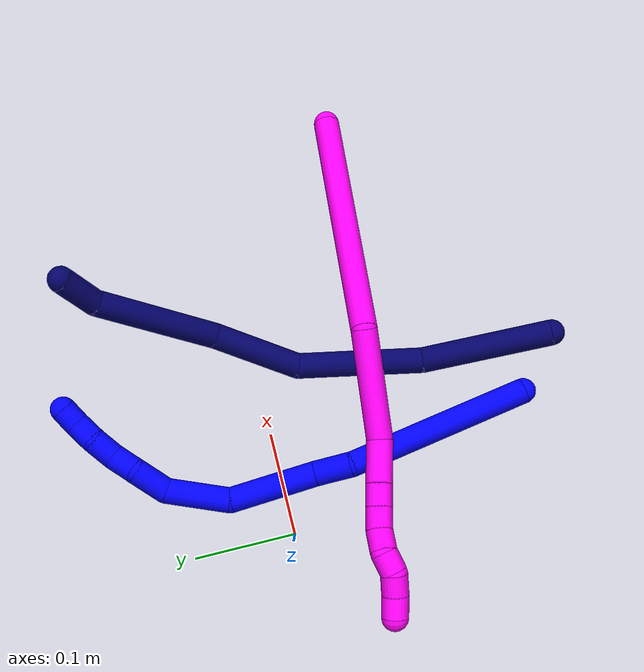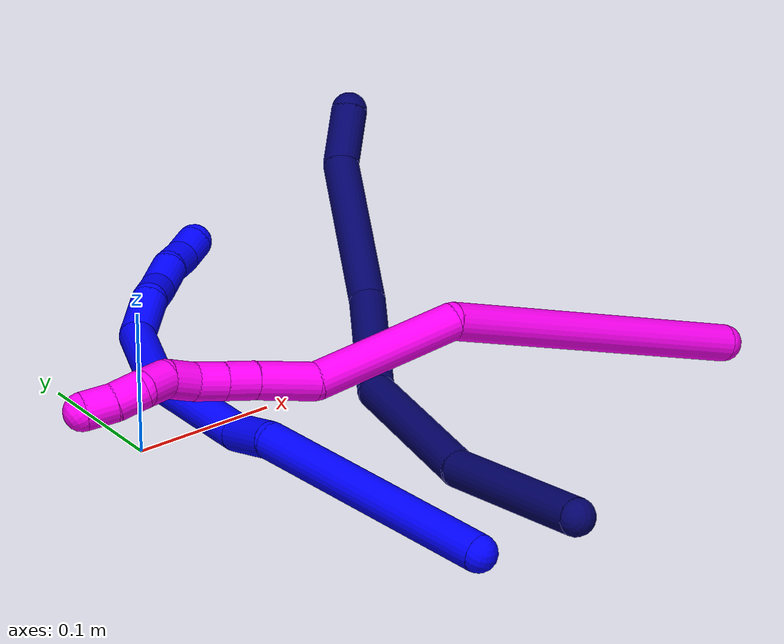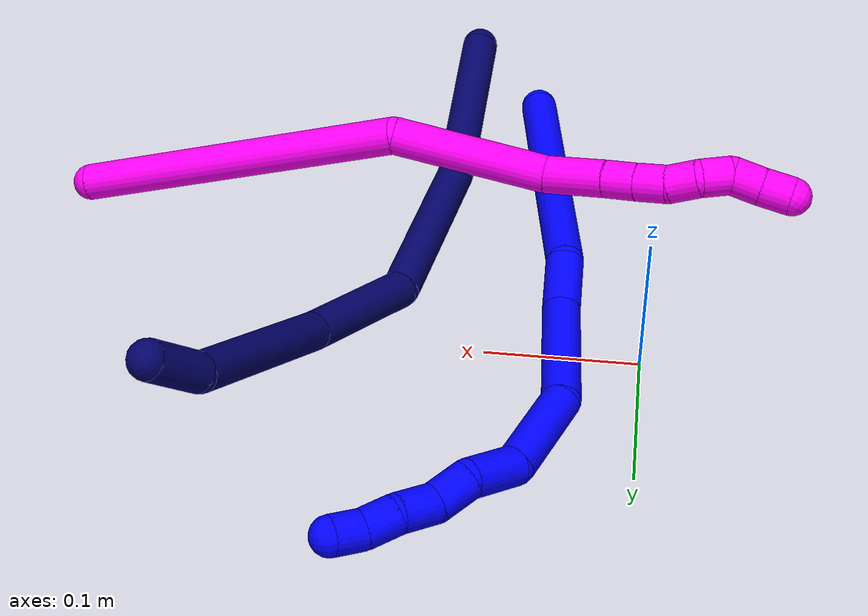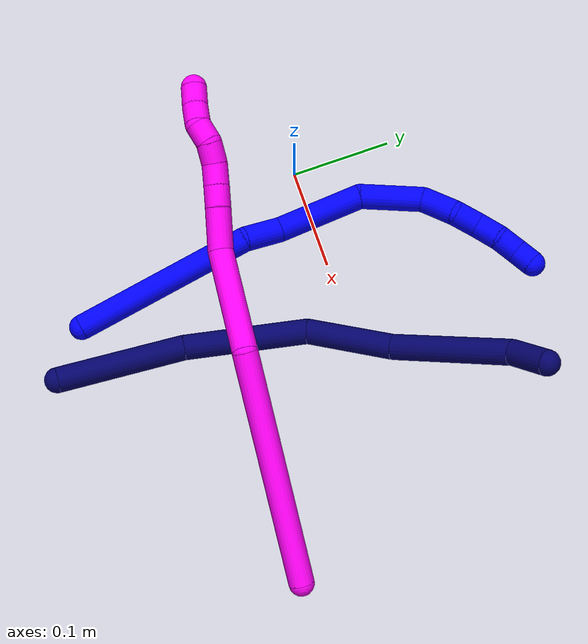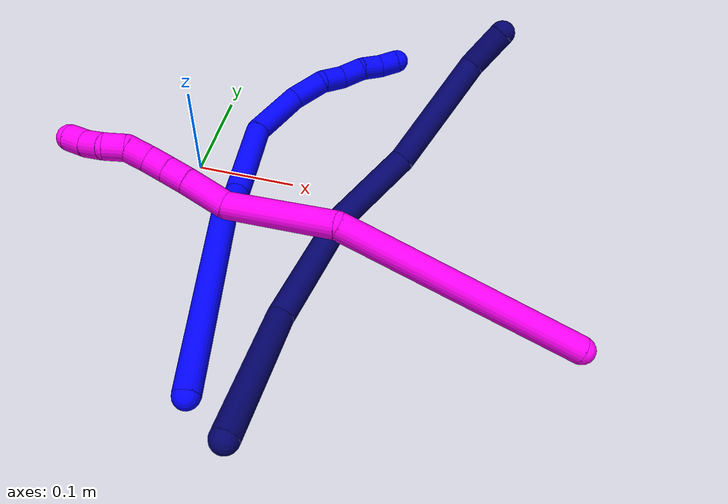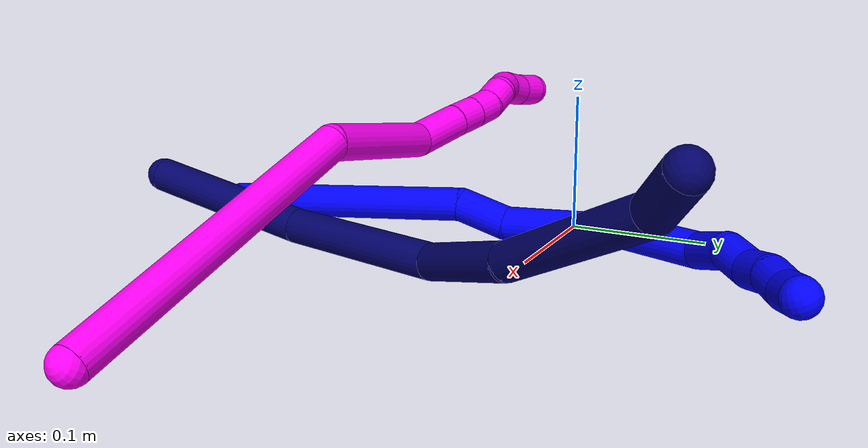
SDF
<sdf version="1.7">
 <world name="default">
  <model name="1">
   <static>0</static>
   <link name="1">
    <collision name="collision-cylinder-e_1_1_4">
     <pose>-0.015159 0.083922 -0.032867 -1.94407 -0.166632 0.24357</pose>
     <geometry><cylinder><radius>0.0125</radius><length>0.182788</length></cylinder></geometry>
     <surface>
      <friction><ode><mu>1.16</mu><mu2>1.16</mu2><slip1>0</slip1><slip2>0</slip2></ode></friction>
      <contact><ode><kp>1e+06</kp><kd>1</kd><max_vel>0</max_vel><min_depth>0.001</min_depth></ode></contact>
     </surface>
    </collision>
    <visual name="visual-cylinder-e_1_1_4">
     <pose>-0.015159 0.083922 -0.032867 -1.94407 -0.166632 0.24357</pose>
     <geometry><cylinder><radius>0.0125</radius><length>0.182788</length></cylinder></geometry>
     <material><ambient>0 0 1 1</ambient></material>
    </visual>
    <collision name="collision-cylinder-e_2_4_5">
     <pose>-0.029714 0.182737 -0.07765 -2.2456 0.031616 -0.065768</pose>
     <geometry><cylinder><radius>0.0125</radius><length>0.038167</length></cylinder></geometry>
     <surface>
      <friction><ode><mu>1.16</mu><mu2>1.16</mu2><slip1>0</slip1><slip2>0</slip2></ode></friction>
      <contact><ode><kp>1e+06</kp><kd>1</kd><max_vel>0</max_vel><min_depth>0.001</min_depth></ode></contact>
     </surface>
    </collision>
    <visual name="visual-cylinder-e_2_4_5">
     <pose>-0.029714 0.182737 -0.07765 -2.2456 0.031616 -0.065768</pose>
     <geometry><cylinder><radius>0.0125</radius><length>0.038167</length></cylinder></geometry>
     <material><ambient>0 0 1 1</ambient></material>
    </visual>
    <collision name="collision-cylinder-e_3_5_6">
     <pose>-0.031907 0.238053 -0.10512 -1.93812 -0.064472 0.093852</pose>
     <geometry><cylinder><radius>0.0125</radius><length>0.086805</length></cylinder></geometry>
     <surface>
      <friction><ode><mu>1.16</mu><mu2>1.16</mu2><slip1>0</slip1><slip2>0</slip2></ode></friction>
      <contact><ode><kp>1e+06</kp><kd>1</kd><max_vel>0</max_vel><min_depth>0.001</min_depth></ode></contact>
     </surface>
    </collision>
    <visual name="visual-cylinder-e_3_5_6">
     <pose>-0.031907 0.238053 -0.10512 -1.93812 -0.064472 0.093852</pose>
     <geometry><cylinder><radius>0.0125</radius><length>0.086805</length></cylinder></geometry>
     <material><ambient>0 0 1 1</ambient></material>
    </visual>
    <collision name="collision-cylinder-e_4_6_7">
     <pose>-0.022903 0.3062 -0.129959 -1.89395 0.383628 -0.527122</pose>
     <geometry><cylinder><radius>0.0125</radius><length>0.063057</length></cylinder></geometry>
     <surface>
      <friction><ode><mu>1.16</mu><mu2>1.16</mu2><slip1>0</slip1><slip2>0</slip2></ode></friction>
      <contact><ode><kp>1e+06</kp><kd>1</kd><max_vel>0</max_vel><min_depth>0.001</min_depth></ode></contact>
     </surface>
    </collision>
    <visual name="visual-cylinder-e_4_6_7">
     <pose>-0.022903 0.3062 -0.129959 -1.89395 0.383628 -0.527122</pose>
     <geometry><cylinder><radius>0.0125</radius><length>0.063057</length></cylinder></geometry>
     <material><ambient>0 0 1 1</ambient></material>
    </visual>
    <collision name="collision-cylinder-e_5_7_8">
     <pose>0.0009 0.34742 -0.137304 -1.42812 0.721802 -0.632237</pose>
     <geometry><cylinder><radius>0.0125</radius><length>0.03633</length></cylinder></geometry>
     <surface>
      <friction><ode><mu>1.16</mu><mu2>1.16</mu2><slip1>0</slip1><slip2>0</slip2></ode></friction>
      <contact><ode><kp>1e+06</kp><kd>1</kd><max_vel>0</max_vel><min_depth>0.001</min_depth></ode></contact>
     </surface>
    </collision>
    <visual name="visual-cylinder-e_5_7_8">
     <pose>0.0009 0.34742 -0.137304 -1.42812 0.721802 -0.632237</pose>
     <geometry><cylinder><radius>0.0125</radius><length>0.03633</length></cylinder></geometry>
     <material><ambient>0 0 1 1</ambient></material>
    </visual>
    <collision name="collision-cylinder-e_6_8_9">
     <pose>0.022073 0.368589 -0.139375 -2.05233 0.814186 -1.23723</pose>
     <geometry><cylinder><radius>0.0125</radius><length>0.025222</length></cylinder></geometry>
     <surface>
      <friction><ode><mu>1.16</mu><mu2>1.16</mu2><slip1>0</slip1><slip2>0</slip2></ode></friction>
      <contact><ode><kp>1e+06</kp><kd>1</kd><max_vel>0</max_vel><min_depth>0.001</min_depth></ode></contact>
     </surface>
    </collision>
    <visual name="visual-cylinder-e_6_8_9">
     <pose>0.022073 0.368589 -0.139375 -2.05233 0.814186 -1.23723</pose>
     <geometry><cylinder><radius>0.0125</radius><length>0.025222</length></cylinder></geometry>
     <material><ambient>0 0 1 1</ambient></material>
    </visual>
    <collision name="collision-cylinder-e_7_9_10">
     <pose>0.04084 0.384607 -0.142641 -1.482 0.853059 -0.788049</pose>
     <geometry><cylinder><radius>0.0125</radius><length>0.025478</length></cylinder></geometry>
     <surface>
      <friction><ode><mu>1.16</mu><mu2>1.16</mu2><slip1>0</slip1><slip2>0</slip2></ode></friction>
      <contact><ode><kp>1e+06</kp><kd>1</kd><max_vel>0</max_vel><min_depth>0.001</min_depth></ode></contact>
     </surface>
    </collision>
    <visual name="visual-cylinder-e_7_9_10">
     <pose>0.04084 0.384607 -0.142641 -1.482 0.853059 -0.788049</pose>
     <geometry><cylinder><radius>0.0125</radius><length>0.025478</length></cylinder></geometry>
     <material><ambient>0 0 1 1</ambient></material>
    </visual>
    <collision name="collision-cylinder-e_8_10_11">
     <pose>0.059651 0.398667 -0.143937 -1.91347 0.988488 -1.30524</pose>
     <geometry><cylinder><radius>0.0125</radius><length>0.022066</length></cylinder></geometry>
     <surface>
      <friction><ode><mu>1.16</mu><mu2>1.16</mu2><slip1>0</slip1><slip2>0</slip2></ode></friction>
      <contact><ode><kp>1e+06</kp><kd>1</kd><max_vel>0</max_vel><min_depth>0.001</min_depth></ode></contact>
     </surface>
    </collision>
    <visual name="visual-cylinder-e_8_10_11">
     <pose>0.059651 0.398667 -0.143937 -1.91347 0.988488 -1.30524</pose>
     <geometry><cylinder><radius>0.0125</radius><length>0.022066</length></cylinder></geometry>
     <material><ambient>0 0 1 1</ambient></material>
    </visual>
    <collision name="collision-cylinder-e_9_11_2">
     <pose>0.077206 0.409918 -0.145167 -1.42577 0.979894 -0.864067</pose>
     <geometry><cylinder><radius>0.0125</radius><length>0.020086</length></cylinder></geometry>
     <surface>
      <friction><ode><mu>1.16</mu><mu2>1.16</mu2><slip1>0</slip1><slip2>0</slip2></ode></friction>
      <contact><ode><kp>1e+06</kp><kd>1</kd><max_vel>0</max_vel><min_depth>0.001</min_depth></ode></contact>
     </surface>
    </collision>
    <visual name="visual-cylinder-e_9_11_2">
     <pose>0.077206 0.409918 -0.145167 -1.42577 0.979894 -0.864067</pose>
     <geometry><cylinder><radius>0.0125</radius><length>0.020086</length></cylinder></geometry>
     <material><ambient>0 0 1 1</ambient></material>
    </visual>
    <collision name="collision-sphere-2">
     <pose>0.085546 0.415455 -0.144359 0 -0 0</pose>
     <geometry><sphere><radius>0.0125</radius></sphere></geometry>
     <surface>
      <friction><ode><mu>1.16</mu><mu2>1.16</mu2><slip1>0</slip1><slip2>0</slip2></ode></friction>
      <contact><ode><kp>1e+06</kp><kd>1</kd><max_vel>0</max_vel><min_depth>0.001</min_depth></ode></contact>
     </surface>
    </collision>
    <visual name="visual-sphere-2">
     <pose>0.085546 0.415455 -0.144359 0 -0 0</pose>
     <geometry><sphere><radius>0.0125</radius></sphere></geometry>
     <material><ambient>0 0 1 1</ambient></material>
    </visual>
    <collision name="collision-sphere-11">
     <pose>0.068866 0.404382 -0.145976 0 -0 0</pose>
     <geometry><sphere><radius>0.0125</radius></sphere></geometry>
     <surface>
      <friction><ode><mu>1.16</mu><mu2>1.16</mu2><slip1>0</slip1><slip2>0</slip2></ode></friction>
      <contact><ode><kp>1e+06</kp><kd>1</kd><max_vel>0</max_vel><min_depth>0.001</min_depth></ode></contact>
     </surface>
    </collision>
    <visual name="visual-sphere-11">
     <pose>0.068866 0.404382 -0.145976 0 -0 0</pose>
     <geometry><sphere><radius>0.0125</radius></sphere></geometry>
     <material><ambient>0 0 1 1</ambient></material>
    </visual>
    <collision name="collision-sphere-10">
     <pose>0.050436 0.392952 -0.141898 0 -0 0</pose>
     <geometry><sphere><radius>0.0125</radius></sphere></geometry>
     <surface>
      <friction><ode><mu>1.16</mu><mu2>1.16</mu2><slip1>0</slip1><slip2>0</slip2></ode></friction>
      <contact><ode><kp>1e+06</kp><kd>1</kd><max_vel>0</max_vel><min_depth>0.001</min_depth></ode></contact>
     </surface>
    </collision>
    <visual name="visual-sphere-10">
     <pose>0.050436 0.392952 -0.141898 0 -0 0</pose>
     <geometry><sphere><radius>0.0125</radius></sphere></geometry>
     <material><ambient>0 0 1 1</ambient></material>
    </visual>
    <collision name="collision-sphere-9">
     <pose>0.031243 0.376261 -0.143384 0 -0 0</pose>
     <geometry><sphere><radius>0.0125</radius></sphere></geometry>
     <surface>
      <friction><ode><mu>1.16</mu><mu2>1.16</mu2><slip1>0</slip1><slip2>0</slip2></ode></friction>
      <contact><ode><kp>1e+06</kp><kd>1</kd><max_vel>0</max_vel><min_depth>0.001</min_depth></ode></contact>
     </surface>
    </collision>
    <visual name="visual-sphere-9">
     <pose>0.031243 0.376261 -0.143384 0 -0 0</pose>
     <geometry><sphere><radius>0.0125</radius></sphere></geometry>
     <material><ambient>0 0 1 1</ambient></material>
    </visual>
    <collision name="collision-sphere-4">
     <pose>-0.030318 0.167843 -0.065734 0 -0 0</pose>
     <geometry><sphere><radius>0.0125</radius></sphere></geometry>
     <surface>
      <friction><ode><mu>1.16</mu><mu2>1.16</mu2><slip1>0</slip1><slip2>0</slip2></ode></friction>
      <contact><ode><kp>1e+06</kp><kd>1</kd><max_vel>0</max_vel><min_depth>0.001</min_depth></ode></contact>
     </surface>
    </collision>
    <visual name="visual-sphere-4">
     <pose>-0.030318 0.167843 -0.065734 0 -0 0</pose>
     <geometry><sphere><radius>0.0125</radius></sphere></geometry>
     <material><ambient>0 0 1 1</ambient></material>
    </visual>
    <collision name="collision-sphere-1">
     <geometry><sphere><radius>0.0125</radius></sphere></geometry>
     <surface>
      <friction><ode><mu>1.16</mu><mu2>1.16</mu2><slip1>0</slip1><slip2>0</slip2></ode></friction>
      <contact><ode><kp>1e+06</kp><kd>1</kd><max_vel>0</max_vel><min_depth>0.001</min_depth></ode></contact>
     </surface>
    </collision>
    <visual name="visual-sphere-1">
     <geometry><sphere><radius>0.0125</radius></sphere></geometry>
     <material><ambient>0 0 1 1</ambient></material>
    </visual>
    <collision name="collision-sphere-8">
     <pose>0.012902 0.360916 -0.135365 0 -0 0</pose>
     <geometry><sphere><radius>0.0125</radius></sphere></geometry>
     <surface>
      <friction><ode><mu>1.16</mu><mu2>1.16</mu2><slip1>0</slip1><slip2>0</slip2></ode></friction>
      <contact><ode><kp>1e+06</kp><kd>1</kd><max_vel>0</max_vel><min_depth>0.001</min_depth></ode></contact>
     </surface>
    </collision>
    <visual name="visual-sphere-8">
     <pose>0.012902 0.360916 -0.135365 0 -0 0</pose>
     <geometry><sphere><radius>0.0125</radius></sphere></geometry>
     <material><ambient>0 0 1 1</ambient></material>
    </visual>
    <collision name="collision-sphere-5">
     <pose>-0.029111 0.19763 -0.089566 0 -0 0</pose>
     <geometry><sphere><radius>0.0125</radius></sphere></geometry>
     <surface>
      <friction><ode><mu>1.16</mu><mu2>1.16</mu2><slip1>0</slip1><slip2>0</slip2></ode></friction>
      <contact><ode><kp>1e+06</kp><kd>1</kd><max_vel>0</max_vel><min_depth>0.001</min_depth></ode></contact>
     </surface>
    </collision>
    <visual name="visual-sphere-5">
     <pose>-0.029111 0.19763 -0.089566 0 -0 0</pose>
     <geometry><sphere><radius>0.0125</radius></sphere></geometry>
     <material><ambient>0 0 1 1</ambient></material>
    </visual>
    <collision name="collision-sphere-6">
     <pose>-0.034704 0.278476 -0.120674 0 -0 0</pose>
     <geometry><sphere><radius>0.0125</radius></sphere></geometry>
     <surface>
      <friction><ode><mu>1.16</mu><mu2>1.16</mu2><slip1>0</slip1><slip2>0</slip2></ode></friction>
      <contact><ode><kp>1e+06</kp><kd>1</kd><max_vel>0</max_vel><min_depth>0.001</min_depth></ode></contact>
     </surface>
    </collision>
    <visual name="visual-sphere-6">
     <pose>-0.034704 0.278476 -0.120674 0 -0 0</pose>
     <geometry><sphere><radius>0.0125</radius></sphere></geometry>
     <material><ambient>0 0 1 1</ambient></material>
    </visual>
    <collision name="collision-sphere-7">
     <pose>-0.011102 0.333923 -0.139243 0 -0 0</pose>
     <geometry><sphere><radius>0.0125</radius></sphere></geometry>
     <surface>
      <friction><ode><mu>1.16</mu><mu2>1.16</mu2><slip1>0</slip1><slip2>0</slip2></ode></friction>
      <contact><ode><kp>1e+06</kp><kd>1</kd><max_vel>0</max_vel><min_depth>0.001</min_depth></ode></contact>
     </surface>
    </collision>
    <visual name="visual-sphere-7">
     <pose>-0.011102 0.333923 -0.139243 0 -0 0</pose>
     <geometry><sphere><radius>0.0125</radius></sphere></geometry>
     <material><ambient>0 0 1 1</ambient></material>
    </visual>
    <inertial>
     <pose>-0.007244 0.22207 -0.089042 0 -0 0</pose>
     <mass>0.5</mass>
     <inertia>
      <ixx>0.000699</ixx>
      <ixy>0</ixy>
      <ixz>0</ixz>
      <iyy>-4e-05</iyy>
      <iyz>0</iyz>
      <izz>-0.000502</izz>
     </inertia>
    </inertial>
   </link>
   <pose>0.082244 -0.250623 0.011897 0.402543 0.155435 0.001176</pose>
  </model>
  <model name="7">
   <static>0</static>
   <link name="7">
    <collision name="collision-cylinder-e_1_1_4">
     <pose>0.027177 0.050361 0.02725 -1.07482 0.44313 -0.266879</pose>
     <geometry><cylinder><radius>0.0125</radius><length>0.126766</length></cylinder></geometry>
     <surface>
      <friction><ode><mu>1.16</mu><mu2>1.16</mu2><slip1>0</slip1><slip2>0</slip2></ode></friction>
      <contact><ode><kp>1e+06</kp><kd>1</kd><max_vel>0</max_vel><min_depth>0.001</min_depth></ode></contact>
     </surface>
    </collision>
    <visual name="visual-cylinder-e_1_1_4">
     <pose>0.027177 0.050361 0.02725 -1.07482 0.44313 -0.266879</pose>
     <geometry><cylinder><radius>0.0125</radius><length>0.126766</length></cylinder></geometry>
     <material><ambient>0.003922 0 0.403922 1</ambient></material>
    </visual>
    <collision name="collision-cylinder-e_2_4_5">
     <pose>0.0678 0.152676 0.084359 -1.04917 0.220741 -0.128082</pose>
     <geometry><cylinder><radius>0.0125</radius><length>0.122826</length></cylinder></geometry>
     <surface>
      <friction><ode><mu>1.16</mu><mu2>1.16</mu2><slip1>0</slip1><slip2>0</slip2></ode></friction>
      <contact><ode><kp>1e+06</kp><kd>1</kd><max_vel>0</max_vel><min_depth>0.001</min_depth></ode></contact>
     </surface>
    </collision>
    <visual name="visual-cylinder-e_2_4_5">
     <pose>0.0678 0.152676 0.084359 -1.04917 0.220741 -0.128082</pose>
     <geometry><cylinder><radius>0.0125</radius><length>0.122826</length></cylinder></geometry>
     <material><ambient>0.003922 0 0.403922 1</ambient></material>
    </visual>
    <collision name="collision-cylinder-e_3_5_6">
     <pose>0.070765 0.239126 0.139494 -0.938459 -0.24034 0.122289</pose>
     <geometry><cylinder><radius>0.0125</radius><length>0.088062</length></cylinder></geometry>
     <surface>
      <friction><ode><mu>1.16</mu><mu2>1.16</mu2><slip1>0</slip1><slip2>0</slip2></ode></friction>
      <contact><ode><kp>1e+06</kp><kd>1</kd><max_vel>0</max_vel><min_depth>0.001</min_depth></ode></contact>
     </surface>
    </collision>
    <visual name="visual-cylinder-e_3_5_6">
     <pose>0.070765 0.239126 0.139494 -0.938459 -0.24034 0.122289</pose>
     <geometry><cylinder><radius>0.0125</radius><length>0.088062</length></cylinder></geometry>
     <material><ambient>0.003922 0 0.403922 1</ambient></material>
    </visual>
    <collision name="collision-cylinder-e_4_6_7">
     <pose>0.04151 0.325624 0.188938 -1.13572 -0.316405 0.202853</pose>
     <geometry><cylinder><radius>0.0125</radius><length>0.120676</length></cylinder></geometry>
     <surface>
      <friction><ode><mu>1.16</mu><mu2>1.16</mu2><slip1>0</slip1><slip2>0</slip2></ode></friction>
      <contact><ode><kp>1e+06</kp><kd>1</kd><max_vel>0</max_vel><min_depth>0.001</min_depth></ode></contact>
     </surface>
    </collision>
    <visual name="visual-cylinder-e_4_6_7">
     <pose>0.04151 0.325624 0.188938 -1.13572 -0.316405 0.202853</pose>
     <geometry><cylinder><radius>0.0125</radius><length>0.120676</length></cylinder></geometry>
     <material><ambient>0.003922 0 0.403922 1</ambient></material>
    </visual>
    <collision name="collision-cylinder-e_5_7_2">
     <pose>0.008949 0.391774 0.219728 -1.13318 -0.723087 0.472182</pose>
     <geometry><cylinder><radius>0.0125</radius><length>0.04167</length></cylinder></geometry>
     <surface>
      <friction><ode><mu>1.16</mu><mu2>1.16</mu2><slip1>0</slip1><slip2>0</slip2></ode></friction>
      <contact><ode><kp>1e+06</kp><kd>1</kd><max_vel>0</max_vel><min_depth>0.001</min_depth></ode></contact>
     </surface>
    </collision>
    <visual name="visual-cylinder-e_5_7_2">
     <pose>0.008949 0.391774 0.219728 -1.13318 -0.723087 0.472182</pose>
     <geometry><cylinder><radius>0.0125</radius><length>0.04167</length></cylinder></geometry>
     <material><ambient>0.003922 0 0.403922 1</ambient></material>
    </visual>
    <collision name="collision-sphere-2">
     <pose>-0.004837 0.405923 0.226348 0 -0 0</pose>
     <geometry><sphere><radius>0.0125</radius></sphere></geometry>
     <surface>
      <friction><ode><mu>1.16</mu><mu2>1.16</mu2><slip1>0</slip1><slip2>0</slip2></ode></friction>
      <contact><ode><kp>1e+06</kp><kd>1</kd><max_vel>0</max_vel><min_depth>0.001</min_depth></ode></contact>
     </surface>
    </collision>
    <visual name="visual-sphere-2">
     <pose>-0.004837 0.405923 0.226348 0 -0 0</pose>
     <geometry><sphere><radius>0.0125</radius></sphere></geometry>
     <material><ambient>0.003922 0 0.403922 1</ambient></material>
    </visual>
    <collision name="collision-sphere-7">
     <pose>0.022736 0.377624 0.213108 0 -0 0</pose>
     <geometry><sphere><radius>0.0125</radius></sphere></geometry>
     <surface>
      <friction><ode><mu>1.16</mu><mu2>1.16</mu2><slip1>0</slip1><slip2>0</slip2></ode></friction>
      <contact><ode><kp>1e+06</kp><kd>1</kd><max_vel>0</max_vel><min_depth>0.001</min_depth></ode></contact>
     </surface>
    </collision>
    <visual name="visual-sphere-7">
     <pose>0.022736 0.377624 0.213108 0 -0 0</pose>
     <geometry><sphere><radius>0.0125</radius></sphere></geometry>
     <material><ambient>0.003922 0 0.403922 1</ambient></material>
    </visual>
    <collision name="collision-sphere-6">
     <pose>0.060285 0.273623 0.164769 0 -0 0</pose>
     <geometry><sphere><radius>0.0125</radius></sphere></geometry>
     <surface>
      <friction><ode><mu>1.16</mu><mu2>1.16</mu2><slip1>0</slip1><slip2>0</slip2></ode></friction>
      <contact><ode><kp>1e+06</kp><kd>1</kd><max_vel>0</max_vel><min_depth>0.001</min_depth></ode></contact>
     </surface>
    </collision>
    <visual name="visual-sphere-6">
     <pose>0.060285 0.273623 0.164769 0 -0 0</pose>
     <geometry><sphere><radius>0.0125</radius></sphere></geometry>
     <material><ambient>0.003922 0 0.403922 1</ambient></material>
    </visual>
    <collision name="collision-sphere-5">
     <pose>0.081246 0.20463 0.114218 0 -0 0</pose>
     <geometry><sphere><radius>0.0125</radius></sphere></geometry>
     <surface>
      <friction><ode><mu>1.16</mu><mu2>1.16</mu2><slip1>0</slip1><slip2>0</slip2></ode></friction>
      <contact><ode><kp>1e+06</kp><kd>1</kd><max_vel>0</max_vel><min_depth>0.001</min_depth></ode></contact>
     </surface>
    </collision>
    <visual name="visual-sphere-5">
     <pose>0.081246 0.20463 0.114218 0 -0 0</pose>
     <geometry><sphere><radius>0.0125</radius></sphere></geometry>
     <material><ambient>0.003922 0 0.403922 1</ambient></material>
    </visual>
    <collision name="collision-sphere-1">
     <geometry><sphere><radius>0.0125</radius></sphere></geometry>
     <surface>
      <friction><ode><mu>1.16</mu><mu2>1.16</mu2><slip1>0</slip1><slip2>0</slip2></ode></friction>
      <contact><ode><kp>1e+06</kp><kd>1</kd><max_vel>0</max_vel><min_depth>0.001</min_depth></ode></contact>
     </surface>
    </collision>
    <visual name="visual-sphere-1">
     <geometry><sphere><radius>0.0125</radius></sphere></geometry>
     <material><ambient>0.003922 0 0.403922 1</ambient></material>
    </visual>
    <collision name="collision-sphere-4">
     <pose>0.054353 0.100722 0.0545 0 -0 0</pose>
     <geometry><sphere><radius>0.0125</radius></sphere></geometry>
     <surface>
      <friction><ode><mu>1.16</mu><mu2>1.16</mu2><slip1>0</slip1><slip2>0</slip2></ode></friction>
      <contact><ode><kp>1e+06</kp><kd>1</kd><max_vel>0</max_vel><min_depth>0.001</min_depth></ode></contact>
     </surface>
    </collision>
    <visual name="visual-sphere-4">
     <pose>0.054353 0.100722 0.0545 0 -0 0</pose>
     <geometry><sphere><radius>0.0125</radius></sphere></geometry>
     <material><ambient>0.003922 0 0.403922 1</ambient></material>
    </visual>
    <inertial>
     <pose>0.046773 0.20363 0.116113 0 -0 0</pose>
     <mass>0.5</mass>
     <inertia>
      <ixx>0.000487</ixx>
      <ixy>0</ixy>
      <ixz>0</ixz>
      <iyy>0.000302</iyy>
      <iyz>0</iyz>
      <izz>-0.000482</izz>
     </inertia>
    </inertial>
   </link>
   <pose>0.129757 -0.286749 0.037786 2.37238 0.901187 2.61541</pose>
  </model>
  <model name="10">
   <static>0</static>
   <link name="10">
    <collision name="collision-cylinder-e_1_1_4">
     <pose>-0.085311 0.0096 -0.077093 -3.0177 -0.832124 2.86267</pose>
     <geometry><cylinder><radius>0.0125</radius><length>0.230768</length></cylinder></geometry>
     <surface>
      <friction><ode><mu>1.16</mu><mu2>1.16</mu2><slip1>0</slip1><slip2>0</slip2></ode></friction>
      <contact><ode><kp>1e+06</kp><kd>1</kd><max_vel>0</max_vel><min_depth>0.001</min_depth></ode></contact>
     </surface>
    </collision>
    <visual name="visual-cylinder-e_1_1_4">
     <pose>-0.085311 0.0096 -0.077093 -3.0177 -0.832124 2.86267</pose>
     <geometry><cylinder><radius>0.0125</radius><length>0.230768</length></cylinder></geometry>
     <material><ambient>1 0 0.964706 1</ambient></material>
    </visual>
    <collision name="collision-cylinder-e_2_4_5">
     <pose>-0.188713 0.01984 -0.202789 -3.12843 -0.356311 3.0685</pose>
     <geometry><cylinder><radius>0.0125</radius><length>0.103728</length></cylinder></geometry>
     <surface>
      <friction><ode><mu>1.16</mu><mu2>1.16</mu2><slip1>0</slip1><slip2>0</slip2></ode></friction>
      <contact><ode><kp>1e+06</kp><kd>1</kd><max_vel>0</max_vel><min_depth>0.001</min_depth></ode></contact>
     </surface>
    </collision>
    <visual name="visual-cylinder-e_2_4_5">
     <pose>-0.188713 0.01984 -0.202789 -3.12843 -0.356311 3.0685</pose>
     <geometry><cylinder><radius>0.0125</radius><length>0.103728</length></cylinder></geometry>
     <material><ambient>1 0 0.964706 1</ambient></material>
    </visual>
    <collision name="collision-cylinder-e_3_5_6">
     <pose>-0.219634 0.025494 -0.266967 -2.83016 -0.664971 2.2882</pose>
     <geometry><cylinder><radius>0.0125</radius><length>0.041585</length></cylinder></geometry>
     <surface>
      <friction><ode><mu>1.16</mu><mu2>1.16</mu2><slip1>0</slip1><slip2>0</slip2></ode></friction>
      <contact><ode><kp>1e+06</kp><kd>1</kd><max_vel>0</max_vel><min_depth>0.001</min_depth></ode></contact>
     </surface>
    </collision>
    <visual name="visual-cylinder-e_3_5_6">
     <pose>-0.219634 0.025494 -0.266967 -2.83016 -0.664971 2.2882</pose>
     <geometry><cylinder><radius>0.0125</radius><length>0.041585</length></cylinder></geometry>
     <material><ambient>1 0 0.964706 1</ambient></material>
    </visual>
    <collision name="collision-cylinder-e_4_6_7">
     <pose>-0.238714 0.032899 -0.290791 -2.85941 -0.629118 2.31839</pose>
     <geometry><cylinder><radius>0.0125</radius><length>0.021245</length></cylinder></geometry>
     <surface>
      <friction><ode><mu>1.16</mu><mu2>1.16</mu2><slip1>0</slip1><slip2>0</slip2></ode></friction>
      <contact><ode><kp>1e+06</kp><kd>1</kd><max_vel>0</max_vel><min_depth>0.001</min_depth></ode></contact>
     </surface>
    </collision>
    <visual name="visual-cylinder-e_4_6_7">
     <pose>-0.238714 0.032899 -0.290791 -2.85941 -0.629118 2.31839</pose>
     <geometry><cylinder><radius>0.0125</radius><length>0.021245</length></cylinder></geometry>
     <material><ambient>1 0 0.964706 1</ambient></material>
    </visual>
    <collision name="collision-cylinder-e_5_7_8">
     <pose>-0.251323 0.037483 -0.30705 -2.87443 -0.653465 2.38653</pose>
     <geometry><cylinder><radius>0.0125</radius><length>0.020917</length></cylinder></geometry>
     <surface>
      <friction><ode><mu>1.16</mu><mu2>1.16</mu2><slip1>0</slip1><slip2>0</slip2></ode></friction>
      <contact><ode><kp>1e+06</kp><kd>1</kd><max_vel>0</max_vel><min_depth>0.001</min_depth></ode></contact>
     </surface>
    </collision>
    <visual name="visual-cylinder-e_5_7_8">
     <pose>-0.251323 0.037483 -0.30705 -2.87443 -0.653465 2.38653</pose>
     <geometry><cylinder><radius>0.0125</radius><length>0.020917</length></cylinder></geometry>
     <material><ambient>1 0 0.964706 1</ambient></material>
    </visual>
    <collision name="collision-cylinder-e_6_8_9">
     <pose>-0.265711 0.040352 -0.321613 -3.03867 -0.88364 2.92466</pose>
     <geometry><cylinder><radius>0.0125</radius><length>0.020774</length></cylinder></geometry>
     <surface>
      <friction><ode><mu>1.16</mu><mu2>1.16</mu2><slip1>0</slip1><slip2>0</slip2></ode></friction>
      <contact><ode><kp>1e+06</kp><kd>1</kd><max_vel>0</max_vel><min_depth>0.001</min_depth></ode></contact>
     </surface>
    </collision>
    <visual name="visual-cylinder-e_6_8_9">
     <pose>-0.265711 0.040352 -0.321613 -3.03867 -0.88364 2.92466</pose>
     <geometry><cylinder><radius>0.0125</radius><length>0.020774</length></cylinder></geometry>
     <material><ambient>1 0 0.964706 1</ambient></material>
    </visual>
    <collision name="collision-cylinder-e_7_9_10">
     <pose>-0.279309 0.038416 -0.336221 2.82782 -0.581724 -2.16934</pose>
     <geometry><cylinder><radius>0.0125</radius><length>0.020269</length></cylinder></geometry>
     <surface>
      <friction><ode><mu>1.16</mu><mu2>1.16</mu2><slip1>0</slip1><slip2>0</slip2></ode></friction>
      <contact><ode><kp>1e+06</kp><kd>1</kd><max_vel>0</max_vel><min_depth>0.001</min_depth></ode></contact>
     </surface>
    </collision>
    <visual name="visual-cylinder-e_7_9_10">
     <pose>-0.279309 0.038416 -0.336221 2.82782 -0.581724 -2.16934</pose>
     <geometry><cylinder><radius>0.0125</radius><length>0.020269</length></cylinder></geometry>
     <material><ambient>1 0 0.964706 1</ambient></material>
    </visual>
    <collision name="collision-cylinder-e_8_10_11">
     <pose>-0.287459 0.036509 -0.35406 -3.06946 -0.257303 2.59758</pose>
     <geometry><cylinder><radius>0.0125</radius><length>0.020289</length></cylinder></geometry>
     <surface>
      <friction><ode><mu>1.16</mu><mu2>1.16</mu2><slip1>0</slip1><slip2>0</slip2></ode></friction>
      <contact><ode><kp>1e+06</kp><kd>1</kd><max_vel>0</max_vel><min_depth>0.001</min_depth></ode></contact>
     </surface>
    </collision>
    <visual name="visual-cylinder-e_8_10_11">
     <pose>-0.287459 0.036509 -0.35406 -3.06946 -0.257303 2.59758</pose>
     <geometry><cylinder><radius>0.0125</radius><length>0.020289</length></cylinder></geometry>
     <material><ambient>1 0 0.964706 1</ambient></material>
    </visual>
    <collision name="collision-cylinder-e_9_11_2">
     <pose>-0.293734 0.038989 -0.3732 -2.95438 -0.370033 2.2117</pose>
     <geometry><cylinder><radius>0.0125</radius><length>0.020425</length></cylinder></geometry>
     <surface>
      <friction><ode><mu>1.16</mu><mu2>1.16</mu2><slip1>0</slip1><slip2>0</slip2></ode></friction>
      <contact><ode><kp>1e+06</kp><kd>1</kd><max_vel>0</max_vel><min_depth>0.001</min_depth></ode></contact>
     </surface>
    </collision>
    <visual name="visual-cylinder-e_9_11_2">
     <pose>-0.293734 0.038989 -0.3732 -2.95438 -0.370033 2.2117</pose>
     <geometry><cylinder><radius>0.0125</radius><length>0.020425</length></cylinder></geometry>
     <material><ambient>1 0 0.964706 1</ambient></material>
    </visual>
    <collision name="collision-sphere-2">
     <pose>-0.297427 0.040761 -0.382555 0 -0 0</pose>
     <geometry><sphere><radius>0.0125</radius></sphere></geometry>
     <surface>
      <friction><ode><mu>1.16</mu><mu2>1.16</mu2><slip1>0</slip1><slip2>0</slip2></ode></friction>
      <contact><ode><kp>1e+06</kp><kd>1</kd><max_vel>0</max_vel><min_depth>0.001</min_depth></ode></contact>
     </surface>
    </collision>
    <visual name="visual-sphere-2">
     <pose>-0.297427 0.040761 -0.382555 0 -0 0</pose>
     <geometry><sphere><radius>0.0125</radius></sphere></geometry>
     <material><ambient>1 0 0.964706 1</ambient></material>
    </visual>
    <collision name="collision-sphere-11">
     <pose>-0.29004 0.037216 -0.363845 0 -0 0</pose>
     <geometry><sphere><radius>0.0125</radius></sphere></geometry>
     <surface>
      <friction><ode><mu>1.16</mu><mu2>1.16</mu2><slip1>0</slip1><slip2>0</slip2></ode></friction>
      <contact><ode><kp>1e+06</kp><kd>1</kd><max_vel>0</max_vel><min_depth>0.001</min_depth></ode></contact>
     </surface>
    </collision>
    <visual name="visual-sphere-11">
     <pose>-0.29004 0.037216 -0.363845 0 -0 0</pose>
     <geometry><sphere><radius>0.0125</radius></sphere></geometry>
     <material><ambient>1 0 0.964706 1</ambient></material>
    </visual>
    <collision name="collision-sphere-10">
     <pose>-0.284877 0.035802 -0.344275 0 -0 0</pose>
     <geometry><sphere><radius>0.0125</radius></sphere></geometry>
     <surface>
      <friction><ode><mu>1.16</mu><mu2>1.16</mu2><slip1>0</slip1><slip2>0</slip2></ode></friction>
      <contact><ode><kp>1e+06</kp><kd>1</kd><max_vel>0</max_vel><min_depth>0.001</min_depth></ode></contact>
     </surface>
    </collision>
    <visual name="visual-sphere-10">
     <pose>-0.284877 0.035802 -0.344275 0 -0 0</pose>
     <geometry><sphere><radius>0.0125</radius></sphere></geometry>
     <material><ambient>1 0 0.964706 1</ambient></material>
    </visual>
    <collision name="collision-sphere-9">
     <pose>-0.27374 0.041029 -0.328167 0 -0 0</pose>
     <geometry><sphere><radius>0.0125</radius></sphere></geometry>
     <surface>
      <friction><ode><mu>1.16</mu><mu2>1.16</mu2><slip1>0</slip1><slip2>0</slip2></ode></friction>
      <contact><ode><kp>1e+06</kp><kd>1</kd><max_vel>0</max_vel><min_depth>0.001</min_depth></ode></contact>
     </surface>
    </collision>
    <visual name="visual-sphere-9">
     <pose>-0.27374 0.041029 -0.328167 0 -0 0</pose>
     <geometry><sphere><radius>0.0125</radius></sphere></geometry>
     <material><ambient>1 0 0.964706 1</ambient></material>
    </visual>
    <collision name="collision-sphere-4">
     <pose>-0.170621 0.0192 -0.154187 0 -0 0</pose>
     <geometry><sphere><radius>0.0125</radius></sphere></geometry>
     <surface>
      <friction><ode><mu>1.16</mu><mu2>1.16</mu2><slip1>0</slip1><slip2>0</slip2></ode></friction>
      <contact><ode><kp>1e+06</kp><kd>1</kd><max_vel>0</max_vel><min_depth>0.001</min_depth></ode></contact>
     </surface>
    </collision>
    <visual name="visual-sphere-4">
     <pose>-0.170621 0.0192 -0.154187 0 -0 0</pose>
     <geometry><sphere><radius>0.0125</radius></sphere></geometry>
     <material><ambient>1 0 0.964706 1</ambient></material>
    </visual>
    <collision name="collision-sphere-1">
     <geometry><sphere><radius>0.0125</radius></sphere></geometry>
     <surface>
      <friction><ode><mu>1.16</mu><mu2>1.16</mu2><slip1>0</slip1><slip2>0</slip2></ode></friction>
      <contact><ode><kp>1e+06</kp><kd>1</kd><max_vel>0</max_vel><min_depth>0.001</min_depth></ode></contact>
     </surface>
    </collision>
    <visual name="visual-sphere-1">
     <geometry><sphere><radius>0.0125</radius></sphere></geometry>
     <material><ambient>1 0 0.964706 1</ambient></material>
    </visual>
    <collision name="collision-sphere-8">
     <pose>-0.257681 0.039675 -0.315059 0 -0 0</pose>
     <geometry><sphere><radius>0.0125</radius></sphere></geometry>
     <surface>
      <friction><ode><mu>1.16</mu><mu2>1.16</mu2><slip1>0</slip1><slip2>0</slip2></ode></friction>
      <contact><ode><kp>1e+06</kp><kd>1</kd><max_vel>0</max_vel><min_depth>0.001</min_depth></ode></contact>
     </surface>
    </collision>
    <visual name="visual-sphere-8">
     <pose>-0.257681 0.039675 -0.315059 0 -0 0</pose>
     <geometry><sphere><radius>0.0125</radius></sphere></geometry>
     <material><ambient>1 0 0.964706 1</ambient></material>
    </visual>
    <collision name="collision-sphere-5">
     <pose>-0.206804 0.02048 -0.251392 0 -0 0</pose>
     <geometry><sphere><radius>0.0125</radius></sphere></geometry>
     <surface>
      <friction><ode><mu>1.16</mu><mu2>1.16</mu2><slip1>0</slip1><slip2>0</slip2></ode></friction>
      <contact><ode><kp>1e+06</kp><kd>1</kd><max_vel>0</max_vel><min_depth>0.001</min_depth></ode></contact>
     </surface>
    </collision>
    <visual name="visual-sphere-5">
     <pose>-0.206804 0.02048 -0.251392 0 -0 0</pose>
     <geometry><sphere><radius>0.0125</radius></sphere></geometry>
     <material><ambient>1 0 0.964706 1</ambient></material>
    </visual>
    <collision name="collision-sphere-6">
     <pose>-0.232464 0.030508 -0.282542 0 -0 0</pose>
     <geometry><sphere><radius>0.0125</radius></sphere></geometry>
     <surface>
      <friction><ode><mu>1.16</mu><mu2>1.16</mu2><slip1>0</slip1><slip2>0</slip2></ode></friction>
      <contact><ode><kp>1e+06</kp><kd>1</kd><max_vel>0</max_vel><min_depth>0.001</min_depth></ode></contact>
     </surface>
    </collision>
    <visual name="visual-sphere-6">
     <pose>-0.232464 0.030508 -0.282542 0 -0 0</pose>
     <geometry><sphere><radius>0.0125</radius></sphere></geometry>
     <material><ambient>1 0 0.964706 1</ambient></material>
    </visual>
    <collision name="collision-sphere-7">
     <pose>-0.244965 0.035291 -0.299041 0 -0 0</pose>
     <geometry><sphere><radius>0.0125</radius></sphere></geometry>
     <surface>
      <friction><ode><mu>1.16</mu><mu2>1.16</mu2><slip1>0</slip1><slip2>0</slip2></ode></friction>
      <contact><ode><kp>1e+06</kp><kd>1</kd><max_vel>0</max_vel><min_depth>0.001</min_depth></ode></contact>
     </surface>
    </collision>
    <visual name="visual-sphere-7">
     <pose>-0.244965 0.035291 -0.299041 0 -0 0</pose>
     <geometry><sphere><radius>0.0125</radius></sphere></geometry>
     <material><ambient>1 0 0.964706 1</ambient></material>
    </visual>
    <inertial>
     <pose>-0.163473 0.019941 -0.18166 0 -0 0</pose>
     <mass>0.5</mass>
     <inertia>
      <ixx>-0.000587</ixx>
      <ixy>0</ixy>
      <ixz>0</ixz>
      <iyy>0.00133</iyy>
      <iyz>0</iyz>
      <izz>0.000688</izz>
     </inertia>
    </inertial>
   </link>
   <pose>0.388435 -0.127956 0.011496 0.326699 1.03505 0.225341</pose>
  </model>
 </world>
</sdf>
